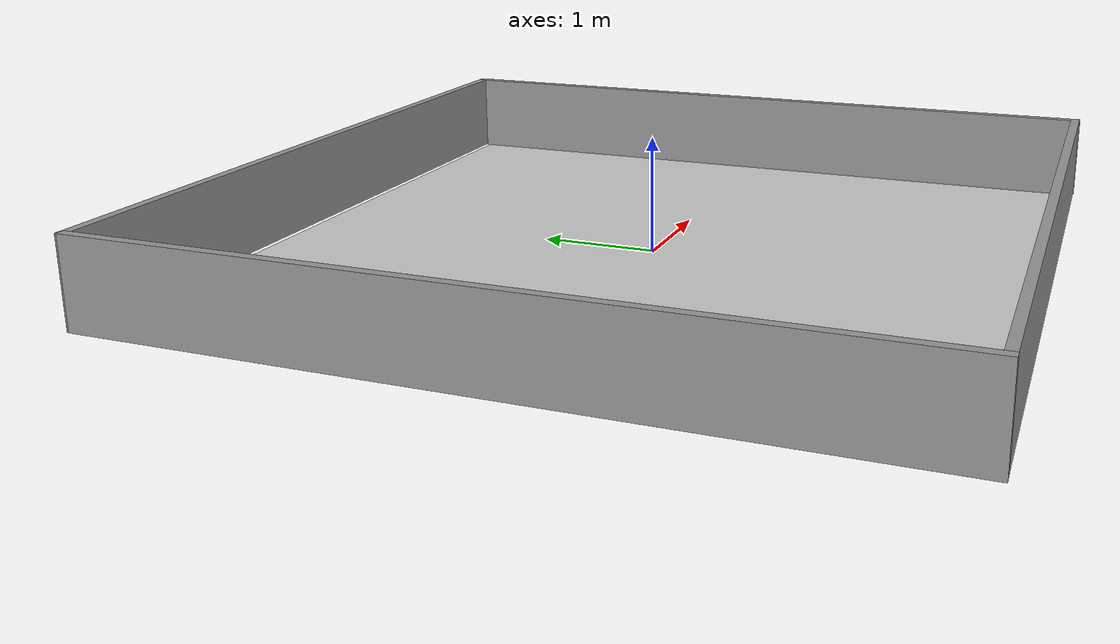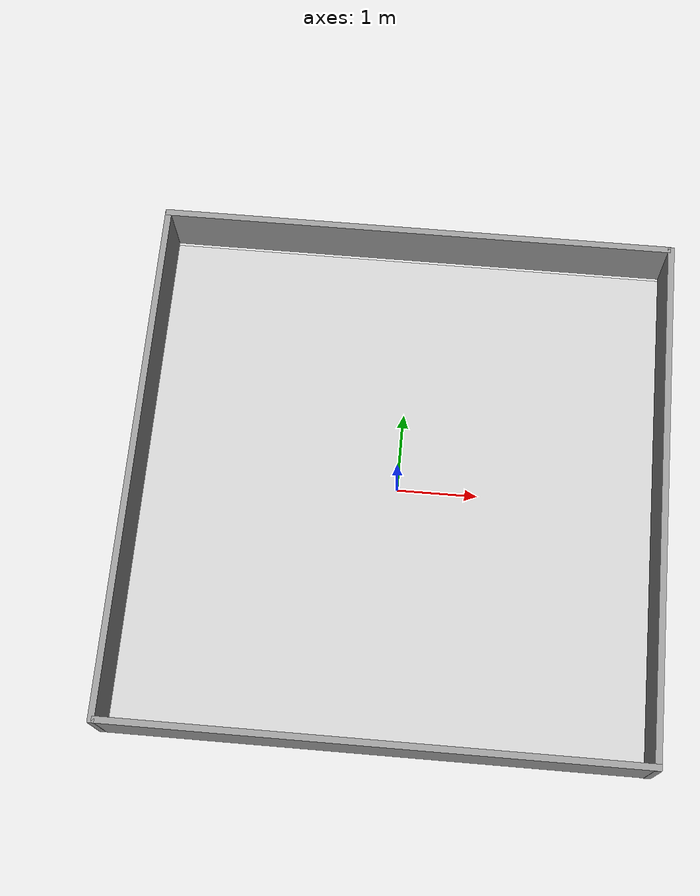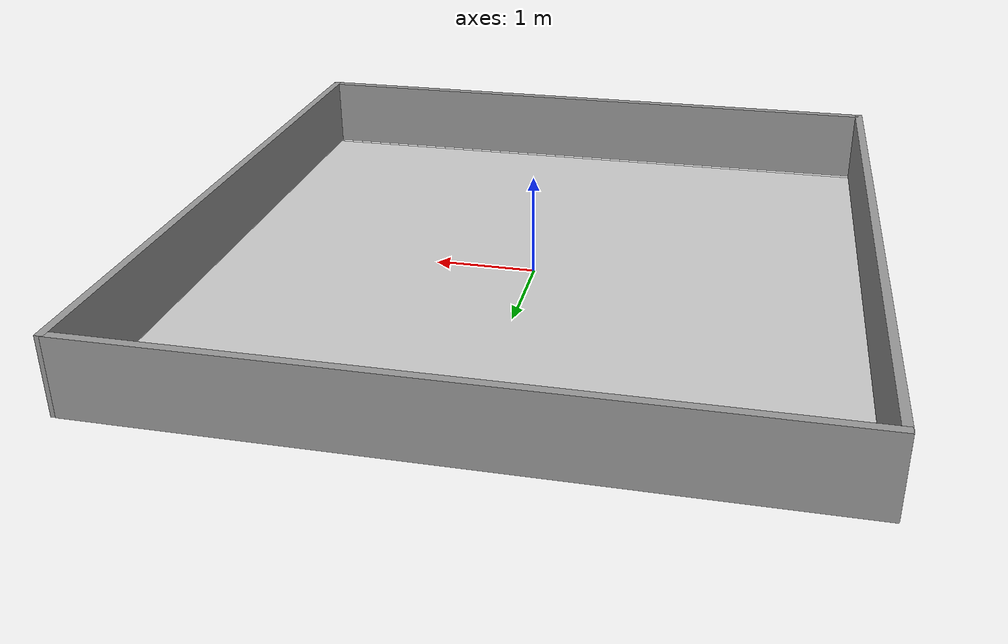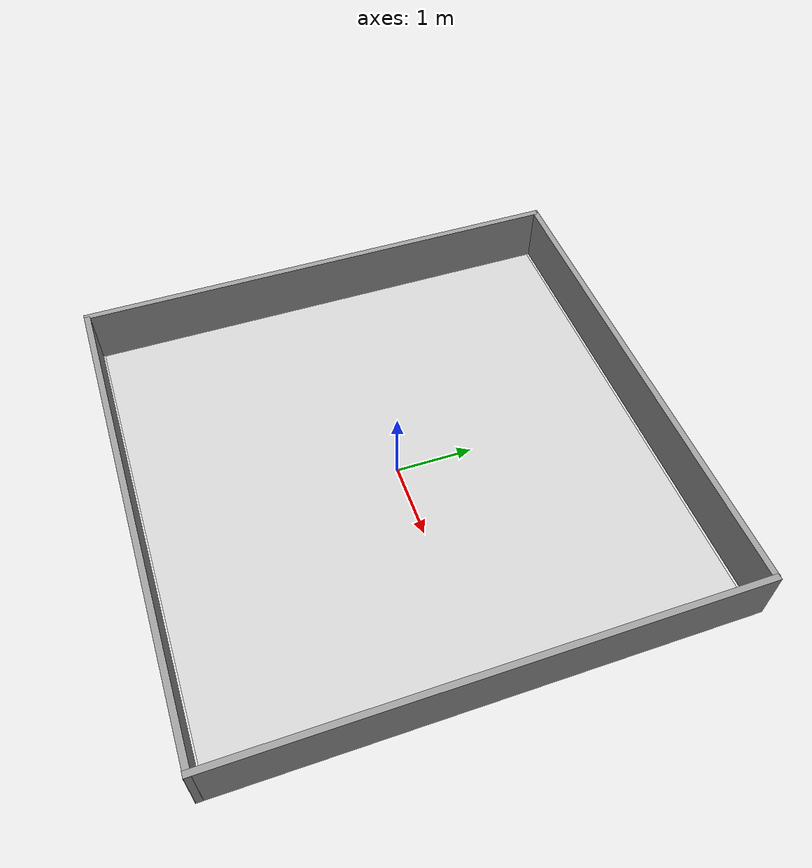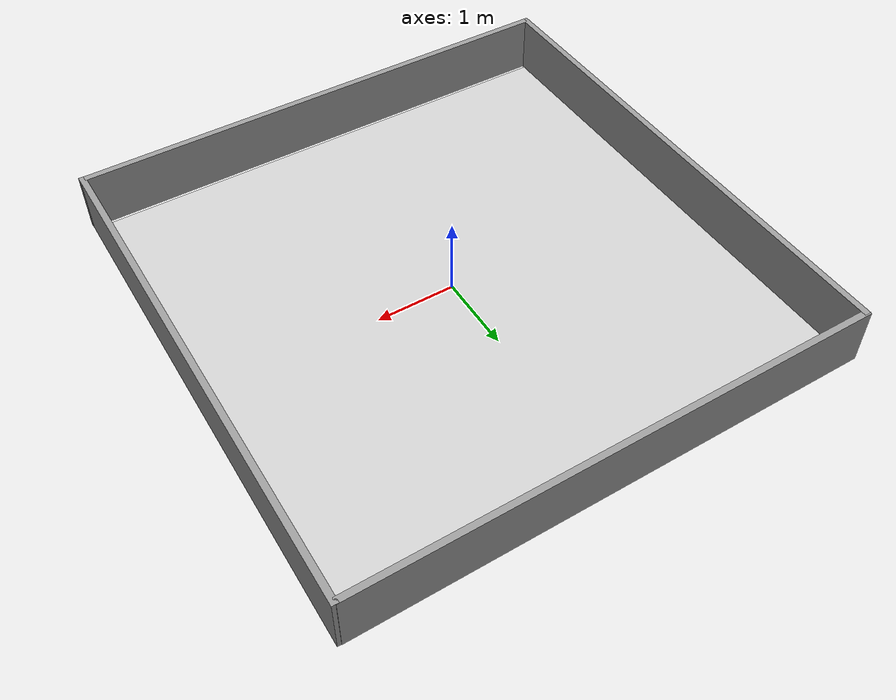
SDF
<sdf version="1.7">
 <world name="default">
  <light name="sun" type="directional">
   <pose>0 0 10 0 -0 0</pose>
   <diffuse>0.8 0.8 0.8 1</diffuse>
   <specular>0.2 0.2 0.2 1</specular>
   <attenuation>
    <range>1000</range>
    <constant>0.9</constant>
    <linear>0.01</linear>
    <quadratic>0.001</quadratic>
   </attenuation>
   <direction>-0.5 0.1 -0.9</direction>
   <spot><inner_angle>0</inner_angle><outer_angle>0</outer_angle><falloff>0</falloff></spot>
  </light>
  <gravity>0 0 -9.8</gravity>
  <magnetic_field>6e-06 2.3e-05 -4.2e-05</magnetic_field>
  <atmosphere type="adiabatic"/>
  <physics name="default_physics" default="0" type="ode">
   <max_step_size>0.001</max_step_size>
   <real_time_factor>1</real_time_factor>
   <real_time_update_rate>1000</real_time_update_rate>
  </physics>
  <scene><ambient>0.4 0.4 0.4 1</ambient><background>0.7 0.7 0.7 1</background><shadows>1</shadows></scene>
  <audio><device>default</device></audio>
  <spherical_coordinates>
   <surface_model>EARTH_WGS84</surface_model>
   <latitude_deg>0</latitude_deg>
   <longitude_deg>0</longitude_deg>
   <elevation>0</elevation>
   <heading_deg>0</heading_deg>
  </spherical_coordinates>
  <model name="map">
   <link name="Wall_29">
    <collision name="Wall_29_Collision">
     <geometry><box><size>6.59 0.08 0.75</size></box></geometry>
     <pose>0 0 0.375 0 -0 0</pose>
    </collision>
    <visual name="Wall_29_Visual">
     <pose>0 0 0.375 0 -0 0</pose>
     <geometry><box><size>6.59 0.08 0.75</size></box></geometry>
     <material>
      <script><uri>file://media/materials/scripts/gazebo.material</uri><name>Gazebo/Grey</name></script>
      <ambient>1 1 1 1</ambient>
     </material>
     <meta><layer>0</layer></meta>
    </visual>
    <pose>-3.23262 -0.0075 0 0 -0 -1.5708</pose>
   </link>
   <link name="Wall_31">
    <collision name="Wall_31_Collision">
     <geometry><box><size>6.5 0.08 0.75</size></box></geometry>
     <pose>0 0 0.375 0 -0 0</pose>
    </collision>
    <visual name="Wall_31_Visual">
     <pose>0 0 0.375 0 -0 0</pose>
     <geometry><box><size>6.5 0.08 0.75</size></box></geometry>
     <material>
      <script><uri>file://media/materials/scripts/gazebo.material</uri><name>Gazebo/Grey</name></script>
      <ambient>1 1 1 1</ambient>
     </material>
     <meta><layer>0</layer></meta>
    </visual>
    <pose>0.022625 -3.26172 0 0 -0 0</pose>
   </link>
   <link name="Wall_37">
    <collision name="Wall_37_Collision">
     <geometry><box><size>6.606 0.08 0.75</size></box></geometry>
     <pose>0 0 0.375 0 -0 0</pose>
    </collision>
    <visual name="Wall_37_Visual">
     <pose>0 0 0.375 0 -0 0</pose>
     <geometry><box><size>6.606 0.08 0.75</size></box></geometry>
     <material>
      <script><uri>file://media/materials/scripts/gazebo.material</uri><name>Gazebo/Grey</name></script>
      <ambient>1 1 1 1</ambient>
     </material>
     <meta><layer>0</layer></meta>
    </visual>
    <pose>3.23138 -0.0025 0 0 -0 -1.5708</pose>
   </link>
   <link name="Wall_39">
    <collision name="Wall_39_Collision">
     <geometry><box><size>6.494 0.08 0.75</size></box></geometry>
     <pose>0 0 0.375 0 -0 0</pose>
    </collision>
    <visual name="Wall_39_Visual">
     <pose>0 0 0.375 0 -0 0</pose>
     <geometry><box><size>6.494 0.08 0.75</size></box></geometry>
     <material>
      <script><uri>file://media/materials/scripts/gazebo.material</uri><name>Gazebo/Grey</name></script>
      <ambient>1 1 1 1</ambient>
     </material>
     <meta><layer>0</layer></meta>
    </visual>
    <pose>-0.021624 3.2655 0 0 -0 3.14159</pose>
   </link>
   <static>1</static>
  </model>
  <model name="my_ground_plane">
   <static>1</static>
   <link name="link">
    <collision name="collision">
     <geometry><plane><normal>0 0 1</normal><size>6.4 6.4</size></plane></geometry>
     <surface><friction><ode><mu>100</mu><mu2>50</mu2></ode></friction></surface>
    </collision>
    <visual name="visual">
     <cast_shadows>0</cast_shadows>
     <geometry><plane><normal>0 0 1</normal><size>6.4 6.4</size></plane></geometry>
     <material>
      <script>
       <uri>model://my_ground_plane/materials/scripts</uri>
       <uri>model://my_ground_plane/materials/textures/</uri>
       <name>MyGroundPlane/Image</name>
      </script>
     </material>
    </visual>
   </link>
  </model>
 </world>
</sdf>
